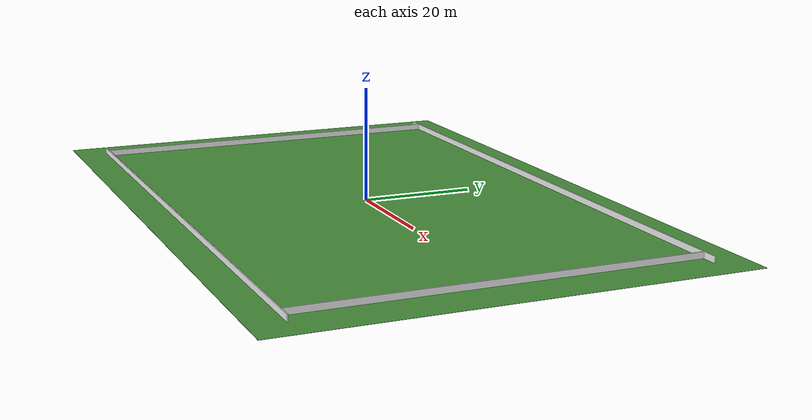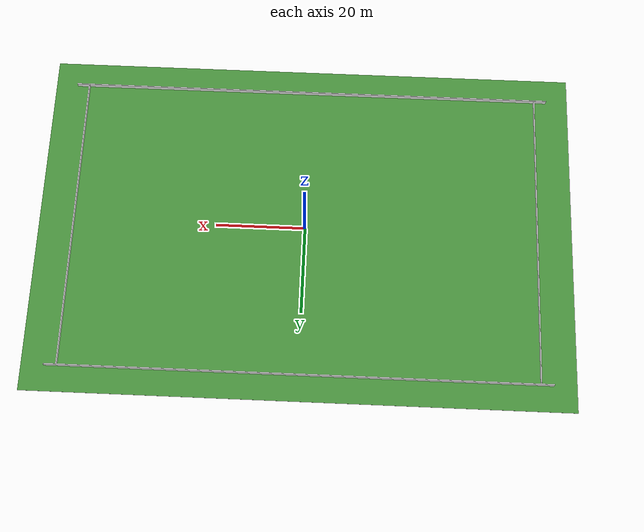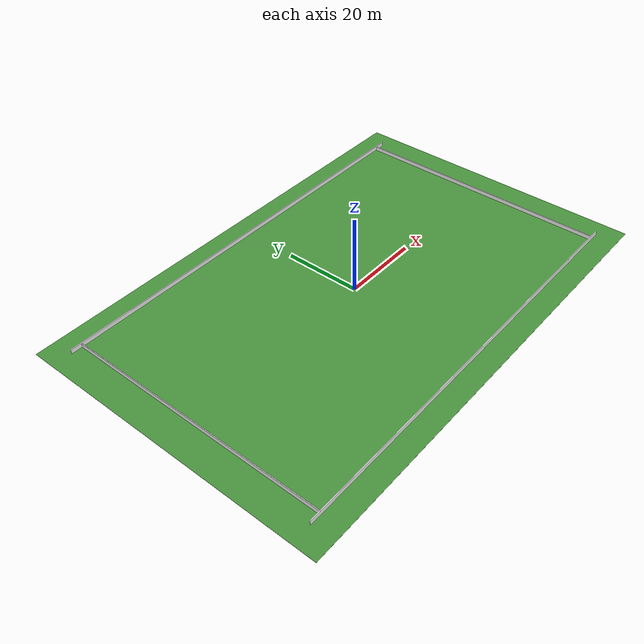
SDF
<?xml version="1.0" ?>
<sdf version="1.6">
  <world name="football_field">
    <gravity>0 0 -9.8</gravity>

    <include>
      <uri>model://sun</uri>
    </include>

    <model name="football_ground">
      <static>true</static>
      <pose>0 0 -0.025 0 0 0</pose>
      <link name="link">
        <collision name="collision">
          <geometry>
            <box><size>120 80 0.05</size></box>
          </geometry>
        </collision>
        <visual name="visual">
          <geometry>
            <box><size>120 80 0.05</size></box>
          </geometry>
          <material>
            <script>
              <uri>file://media/materials/scripts/gazebo.material</uri>
              <name>Gazebo/Grass</name>
            </script>
          </material>
        </visual>
      </link>
    </model>

    <model name="sideline_north">
      <static>true</static>
      <pose>0 34.2 0.55 0 0 0</pose>
      <link name="link">
        <collision name="collision">
          <geometry>
            <box><size>110 0.2 1.1</size></box>
          </geometry>
        </collision>
        <visual name="visual">
          <geometry>
            <box><size>110 0.2 1.1</size></box>
          </geometry>
          <material>
            <script>
              <uri>file://media/materials/scripts/gazebo.material</uri>
              <name>Gazebo/White</name>
            </script>
          </material>
        </visual>
      </link>
    </model>

    <model name="sideline_south">
      <static>true</static>
      <pose>0 -34.2 0.55 0 0 0</pose>
      <link name="link">
        <collision name="collision">
          <geometry>
            <box><size>110 0.2 1.1</size></box>
          </geometry>
        </collision>
        <visual name="visual">
          <geometry>
            <box><size>110 0.2 1.1</size></box>
          </geometry>
          <material>
            <script>
              <uri>file://media/materials/scripts/gazebo.material</uri>
              <name>Gazebo/White</name>
            </script>
          </material>
        </visual>
      </link>
    </model>

    <model name="goal_line_east">
      <static>true</static>
      <pose>52.2 0 0.55 0 0 1.5708</pose>
      <link name="link">
        <collision name="collision">
          <geometry>
            <box><size>68.4 0.2 1.1</size></box>
          </geometry>
        </collision>
        <visual name="visual">
          <geometry>
            <box><size>68.4 0.2 1.1</size></box>
          </geometry>
          <material>
            <script>
              <uri>file://media/materials/scripts/gazebo.material</uri>
              <name>Gazebo/White</name>
            </script>
          </material>
        </visual>
      </link>
    </model>

    <model name="goal_line_west">
      <static>true</static>
      <pose>-52.2 0 0.55 0 0 1.5708</pose>
      <link name="link">
        <collision name="collision">
          <geometry>
            <box><size>68.4 0.2 1.1</size></box>
          </geometry>
        </collision>
        <visual name="visual">
          <geometry>
            <box><size>68.4 0.2 1.1</size></box>
          </geometry>
          <material>
            <script>
              <uri>file://media/materials/scripts/gazebo.material</uri>
              <name>Gazebo/White</name>
            </script>
          </material>
        </visual>
      </link>
    </model>
  </world>
</sdf>
